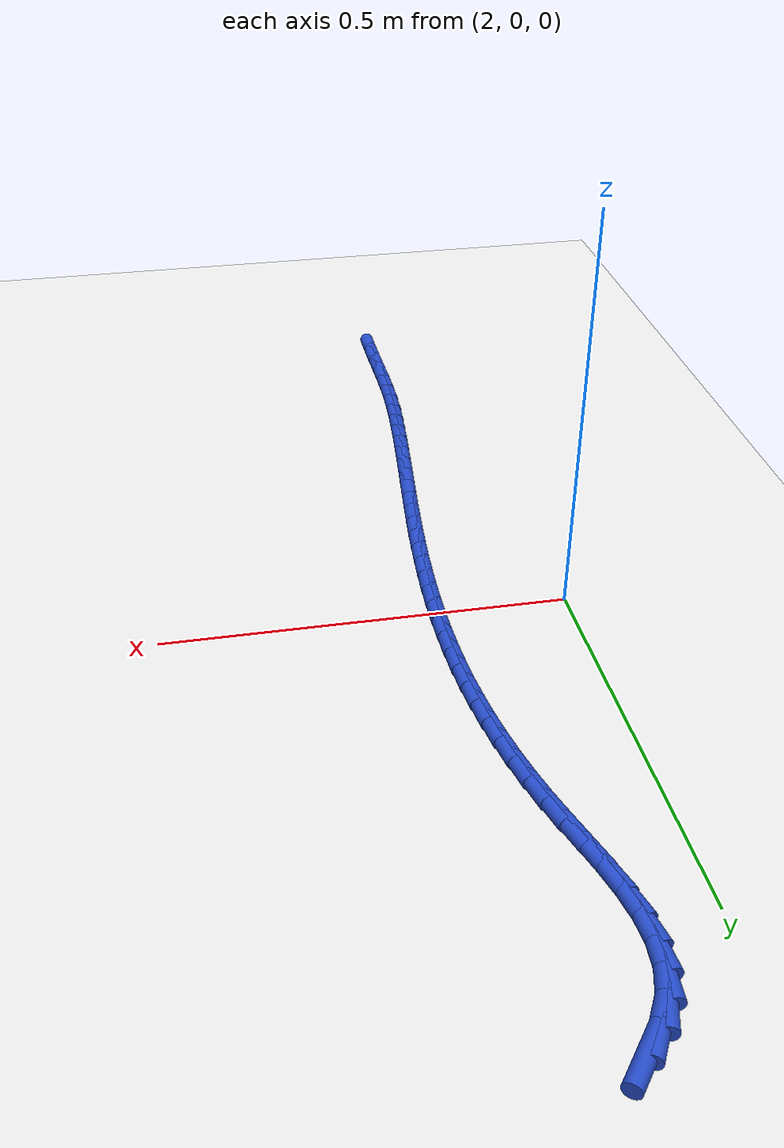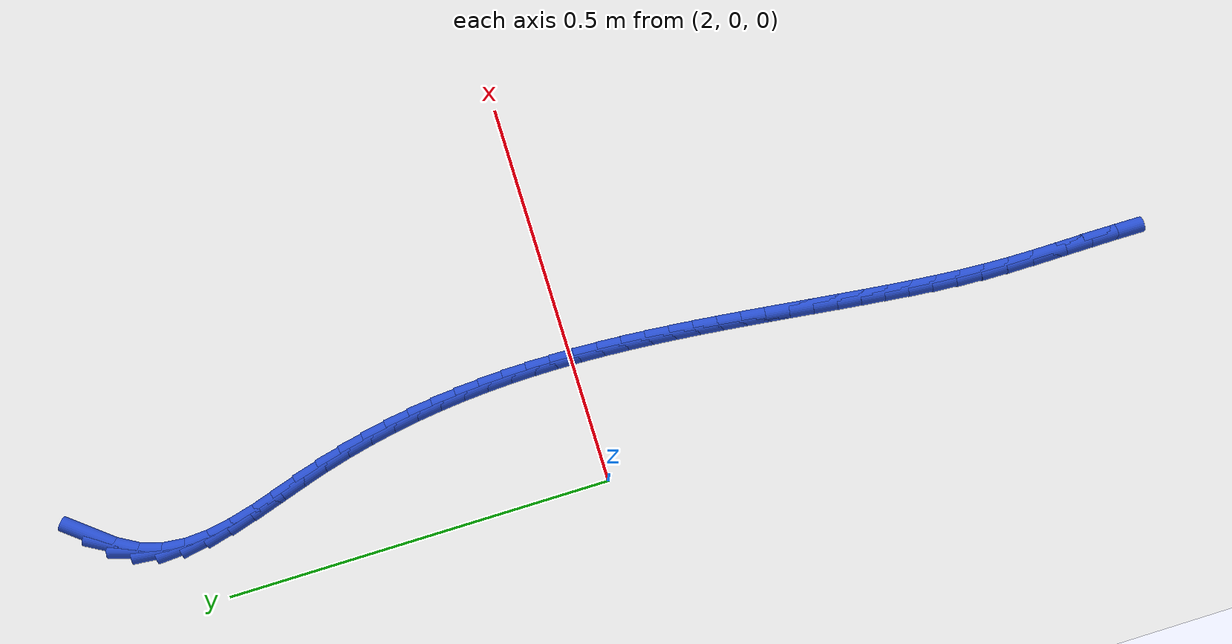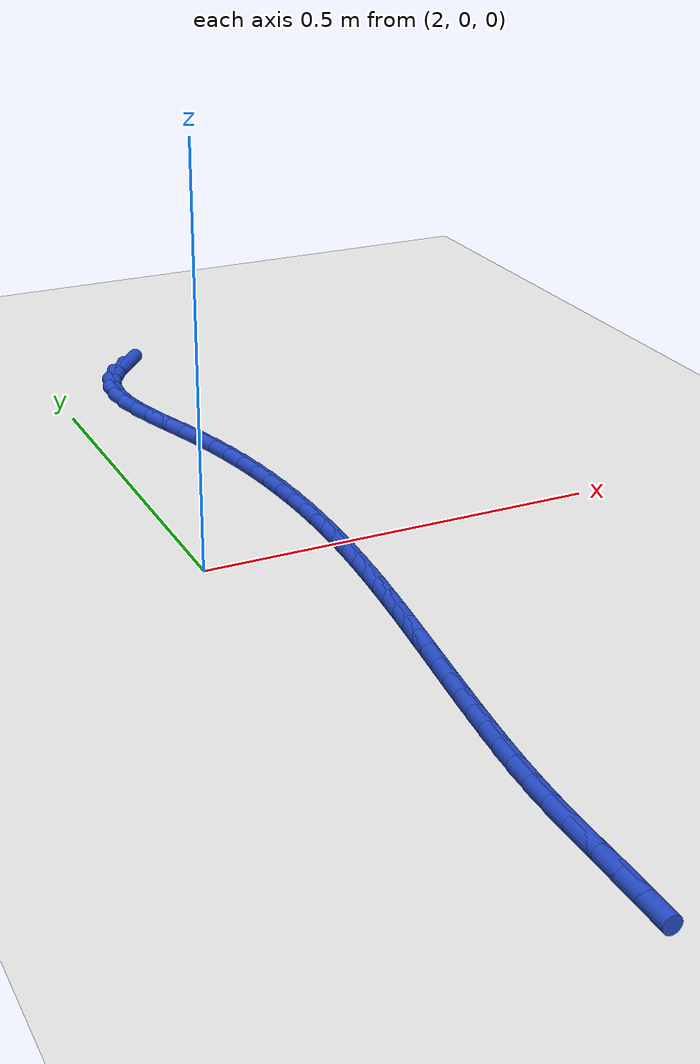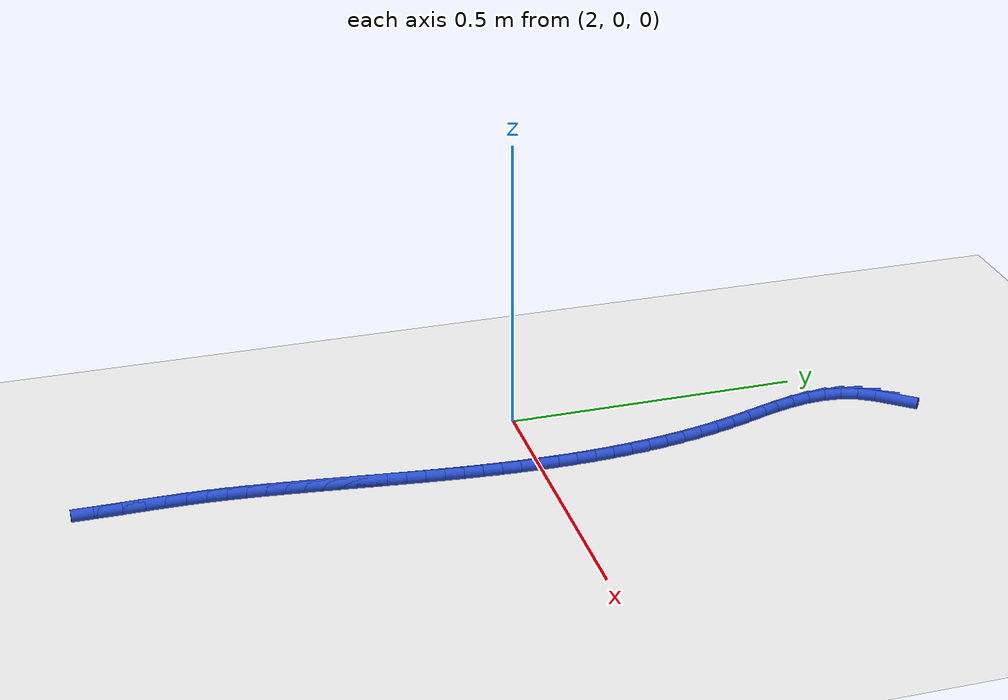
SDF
<sdf version="1.6">
 <world name="default">
  <model name="ground_plane">
   <static>1</static>
   <link name="link">
    <collision name="collision">
     <geometry><plane><normal>0 0 1</normal><size>100 100</size></plane></geometry>
     <surface><friction><ode><mu>100</mu><mu2>50</mu2></ode></friction></surface>
    </collision>
    <visual name="visual">
     <cast_shadows>0</cast_shadows>
     <geometry><plane><normal>0 0 1</normal><size>100 100</size></plane></geometry>
     <material>
      <script><uri>file://media/materials/scripts/gazebo.material</uri><name>Gazebo/WhiteGlow</name></script>
     </material>
    </visual>
   </link>
  </model>
  <model name="line">
   <link name="link_106">
    <pose>2.126607404953584 0.6441830843805446 0.01 0 1.57 0.8977410231291956</pose>
    <collision name="collision">
     <geometry><cylinder><radius>0.01</radius><length>0.08</length></cylinder></geometry>
    </collision>
    <visual name="visual">
     <material>
      <script><name>Gazebo/Blue</name><uri>file://media/materials/scripts/gazebo.material</uri></script>
     </material>
     <geometry><cylinder><radius>0.01</radius><length>0.08</length></cylinder></geometry>
    </visual>
   </link>
   <link name="link_107">
    <pose>2.105734630013912 0.6180017663672117 0.01 0 1.57 1.0568387449022112</pose>
    <collision name="collision">
     <geometry><cylinder><radius>0.01</radius><length>0.08</length></cylinder></geometry>
    </collision>
    <visual name="visual">
     <material>
      <script><name>Gazebo/Blue</name><uri>file://media/materials/scripts/gazebo.material</uri></script>
     </material>
     <geometry><cylinder><radius>0.01</radius><length>0.08</length></cylinder></geometry>
    </visual>
   </link>
   <link name="link_108">
    <pose>2.090233043172412 0.5905442435208247 0.01 0 1.57 1.2754294400649848</pose>
    <collision name="collision">
     <geometry><cylinder><radius>0.01</radius><length>0.08</length></cylinder></geometry>
    </collision>
    <visual name="visual">
     <material>
      <script><name>Gazebo/Blue</name><uri>file://media/materials/scripts/gazebo.material</uri></script>
     </material>
     <geometry><cylinder><radius>0.01</radius><length>0.08</length></cylinder></geometry>
    </visual>
   </link>
   <link name="link_109">
    <pose>2.0814799220580156 0.5617763511132083 0.01 0 1.57 1.474329962739084</pose>
    <collision name="collision">
     <geometry><cylinder><radius>0.01</radius><length>0.08</length></cylinder></geometry>
    </collision>
    <visual name="visual">
     <material>
      <script><name>Gazebo/Blue</name><uri>file://media/materials/scripts/gazebo.material</uri></script>
     </material>
     <geometry><cylinder><radius>0.01</radius><length>0.08</length></cylinder></geometry>
    </visual>
   </link>
   <link name="link_110">
    <pose>2.0785861787759523 0.5318720256302679 0.01 0 1.57 -1.5092006525082051</pose>
    <collision name="collision">
     <geometry><cylinder><radius>0.01</radius><length>0.08</length></cylinder></geometry>
    </collision>
    <visual name="visual">
     <material>
      <script><name>Gazebo/Blue</name><uri>file://media/materials/scripts/gazebo.material</uri></script>
     </material>
     <geometry><cylinder><radius>0.01</radius><length>0.08</length></cylinder></geometry>
    </visual>
   </link>
   <link name="link_111">
    <pose>2.080488865063198 0.5010211676878509 0.01 0 1.57 -1.3943335927487148</pose>
    <collision name="collision">
     <geometry><cylinder><radius>0.01</radius><length>0.08</length></cylinder></geometry>
    </collision>
    <visual name="visual">
     <material>
      <script><name>Gazebo/Blue</name><uri>file://media/materials/scripts/gazebo.material</uri></script>
     </material>
     <geometry><cylinder><radius>0.01</radius><length>0.08</length></cylinder></geometry>
    </visual>
   </link>
   <link name="link_112">
    <pose>2.0861250326567293 0.46941367790180344 0.01 0 1.57 -1.3181349389689676</pose>
    <collision name="collision">
     <geometry><cylinder><radius>0.01</radius><length>0.08</length></cylinder></geometry>
    </collision>
    <visual name="visual">
     <material>
      <script><name>Gazebo/Blue</name><uri>file://media/materials/scripts/gazebo.material</uri></script>
     </material>
     <geometry><cylinder><radius>0.01</radius><length>0.08</length></cylinder></geometry>
    </visual>
   </link>
   <link name="link_113">
    <pose>2.0944317332935216 0.43723945688797194 0.01 0 1.57 -1.2751462137543375</pose>
    <collision name="collision">
     <geometry><cylinder><radius>0.01</radius><length>0.08</length></cylinder></geometry>
    </collision>
    <visual name="visual">
     <material>
      <script><name>Gazebo/Blue</name><uri>file://media/materials/scripts/gazebo.material</uri></script>
     </material>
     <geometry><cylinder><radius>0.01</radius><length>0.08</length></cylinder></geometry>
    </visual>
   </link>
   <link name="link_114">
    <pose>2.104346018710552 0.4046884052622029 0.01 0 1.57 -1.2615709286415946</pose>
    <collision name="collision">
     <geometry><cylinder><radius>0.01</radius><length>0.08</length></cylinder></geometry>
    </collision>
    <visual name="visual">
     <material>
      <script><name>Gazebo/Blue</name><uri>file://media/materials/scripts/gazebo.material</uri></script>
     </material>
     <geometry><cylinder><radius>0.01</radius><length>0.08</length></cylinder></geometry>
    </visual>
   </link>
   <link name="link_115">
    <pose>2.114804940644796 0.3719504236403425 0.01 0 1.57 -1.2758924909136948</pose>
    <collision name="collision">
     <geometry><cylinder><radius>0.01</radius><length>0.08</length></cylinder></geometry>
    </collision>
    <visual name="visual">
     <material>
      <script><name>Gazebo/Blue</name><uri>file://media/materials/scripts/gazebo.material</uri></script>
     </material>
     <geometry><cylinder><radius>0.01</radius><length>0.08</length></cylinder></geometry>
    </visual>
   </link>
   <link name="link_116">
    <pose>2.1247487332104575 0.3392148628233388 0.01 0 1.57 -1.3092193144514563</pose>
    <collision name="collision">
     <geometry><cylinder><radius>0.01</radius><length>0.08</length></cylinder></geometry>
    </collision>
    <visual name="visual">
     <material>
      <script><name>Gazebo/Blue</name><uri>file://media/materials/scripts/gazebo.material</uri></script>
     </material>
     <geometry><cylinder><radius>0.01</radius><length>0.08</length></cylinder></geometry>
    </visual>
   </link>
   <link name="link_117">
    <pose>2.1334777137640804 0.30660886252981917 0.01 0 1.57 -1.34375813112858</pose>
    <collision name="collision">
     <geometry><cylinder><radius>0.01</radius><length>0.08</length></cylinder></geometry>
    </collision>
    <visual name="visual">
     <material>
      <script><name>Gazebo/Blue</name><uri>file://media/materials/scripts/gazebo.material</uri></script>
     </material>
     <geometry><cylinder><radius>0.01</radius><length>0.08</length></cylinder></geometry>
    </visual>
   </link>
   <link name="link_118">
    <pose>2.1409784842028214 0.27414099405025333 0.01 0 1.57 -1.377289689485116</pose>
    <collision name="collision">
     <geometry><cylinder><radius>0.01</radius><length>0.08</length></cylinder></geometry>
    </collision>
    <visual name="visual">
     <material>
      <script><name>Gazebo/Blue</name><uri>file://media/materials/scripts/gazebo.material</uri></script>
     </material>
     <geometry><cylinder><radius>0.01</radius><length>0.08</length></cylinder></geometry>
    </visual>
   </link>
   <link name="link_119">
    <pose>2.147314704774968 0.24180651541067266 0.01 0 1.57 -1.4096474455952612</pose>
    <collision name="collision">
     <geometry><cylinder><radius>0.01</radius><length>0.08</length></cylinder></geometry>
    </collision>
    <visual name="visual">
     <material>
      <script><name>Gazebo/Blue</name><uri>file://media/materials/scripts/gazebo.material</uri></script>
     </material>
     <geometry><cylinder><radius>0.01</radius><length>0.08</length></cylinder></geometry>
    </visual>
   </link>
   <link name="link_120">
    <pose>2.152550035728809 0.20960068463710668 0.01 0 1.57 -1.4406799713433642</pose>
    <collision name="collision">
     <geometry><cylinder><radius>0.01</radius><length>0.08</length></cylinder></geometry>
    </collision>
    <visual name="visual">
     <material>
      <script><name>Gazebo/Blue</name><uri>file://media/materials/scripts/gazebo.material</uri></script>
     </material>
     <geometry><cylinder><radius>0.01</radius><length>0.08</length></cylinder></geometry>
    </visual>
   </link>
   <link name="link_121">
    <pose>2.1567481373126323 0.1775187597555856 0.01 0 1.57 -1.4702524638017678</pose>
    <collision name="collision">
     <geometry><cylinder><radius>0.01</radius><length>0.08</length></cylinder></geometry>
    </collision>
    <visual name="visual">
     <material>
      <script><name>Gazebo/Blue</name><uri>file://media/materials/scripts/gazebo.material</uri></script>
     </material>
     <geometry><cylinder><radius>0.01</radius><length>0.08</length></cylinder></geometry>
    </visual>
   </link>
   <link name="link_122">
    <pose>2.159972669774726 0.14555599879213965 0.01 0 1.57 -1.4982474482444104</pose>
    <collision name="collision">
     <geometry><cylinder><radius>0.01</radius><length>0.08</length></cylinder></geometry>
    </collision>
    <visual name="visual">
     <material>
      <script><name>Gazebo/Blue</name><uri>file://media/materials/scripts/gazebo.material</uri></script>
     </material>
     <geometry><cylinder><radius>0.01</radius><length>0.08</length></cylinder></geometry>
    </visual>
   </link>
   <link name="link_123">
    <pose>2.1622872933633794 0.11370765977279854 0.01 0 1.57 -1.5245647369995385</pose>
    <collision name="collision">
     <geometry><cylinder><radius>0.01</radius><length>0.08</length></cylinder></geometry>
    </collision>
    <visual name="visual">
     <material>
      <script><name>Gazebo/Blue</name><uri>file://media/materials/scripts/gazebo.material</uri></script>
     </material>
     <geometry><cylinder><radius>0.01</radius><length>0.08</length></cylinder></geometry>
    </visual>
   </link>
   <link name="link_124">
    <pose>2.1637556683268797 0.08196900072359342 0.01 0 1.57 -1.5491207489856658</pose>
    <collision name="collision">
     <geometry><cylinder><radius>0.01</radius><length>0.08</length></cylinder></geometry>
    </collision>
    <visual name="visual">
     <material>
      <script><name>Gazebo/Blue</name><uri>file://media/materials/scripts/gazebo.material</uri></script>
     </material>
     <geometry><cylinder><radius>0.01</radius><length>0.08</length></cylinder></geometry>
    </visual>
   </link>
   <link name="link_125">
    <pose>2.164441454913516 0.05033527967055401 0.01 0 1.57 1.5697453332981302</pose>
    <collision name="collision">
     <geometry><cylinder><radius>0.01</radius><length>0.08</length></cylinder></geometry>
    </collision>
    <visual name="visual">
     <material>
      <script><name>Gazebo/Blue</name><uri>file://media/materials/scripts/gazebo.material</uri></script>
     </material>
     <geometry><cylinder><radius>0.01</radius><length>0.08</length></cylinder></geometry>
    </visual>
   </link>
   <link name="link_126">
    <pose>2.1644083133715757 0.01880175463970998 0.01 0 1.57 1.5489025081443442</pose>
    <collision name="collision">
     <geometry><cylinder><radius>0.01</radius><length>0.08</length></cylinder></geometry>
    </collision>
    <visual name="visual">
     <material>
      <script><name>Gazebo/Blue</name><uri>file://media/materials/scripts/gazebo.material</uri></script>
     </material>
     <geometry><cylinder><radius>0.01</radius><length>0.08</length></cylinder></geometry>
    </visual>
   </link>
   <link name="link_127">
    <pose>2.163719903949348 -0.012636316342907489 0.01 0 1.57 1.5299856686447213</pose>
    <collision name="collision">
     <geometry><cylinder><radius>0.01</radius><length>0.08</length></cylinder></geometry>
    </collision>
    <visual name="visual">
     <material>
      <script><name>Gazebo/Blue</name><uri>file://media/materials/scripts/gazebo.material</uri></script>
     </material>
     <geometry><cylinder><radius>0.01</radius><length>0.08</length></cylinder></geometry>
    </visual>
   </link>
   <link name="link_128">
    <pose>2.1624398868951213 -0.043983675251268665 0.01 0 1.57 1.5130268925269656</pose>
    <collision name="collision">
     <geometry><cylinder><radius>0.01</radius><length>0.08</length></cylinder></geometry>
    </collision>
    <visual name="visual">
     <material>
      <script><name>Gazebo/Blue</name><uri>file://media/materials/scripts/gazebo.material</uri></script>
     </material>
     <geometry><cylinder><radius>0.01</radius><length>0.08</length></cylinder></geometry>
    </visual>
   </link>
   <link name="link_129">
    <pose>2.160631922457183 -0.07524506405934339 0.01 0 1.57 1.4980500087240949</pose>
    <collision name="collision">
     <geometry><cylinder><radius>0.01</radius><length>0.08</length></cylinder></geometry>
    </collision>
    <visual name="visual">
     <material>
      <script><name>Gazebo/Blue</name><uri>file://media/materials/scripts/gazebo.material</uri></script>
     </material>
     <geometry><cylinder><radius>0.01</radius><length>0.08</length></cylinder></geometry>
    </visual>
   </link>
   <link name="link_130">
    <pose>2.1583596708838217 -0.1064252247411015 0.01 0 1.57 1.4850724372768678</pose>
    <collision name="collision">
     <geometry><cylinder><radius>0.01</radius><length>0.08</length></cylinder></geometry>
    </collision>
    <visual name="visual">
     <material>
      <script><name>Gazebo/Blue</name><uri>file://media/materials/scripts/gazebo.material</uri></script>
     </material>
     <geometry><cylinder><radius>0.01</radius><length>0.08</length></cylinder></geometry>
    </visual>
   </link>
   <link name="link_131">
    <pose>2.1556867924233267 -0.13752889927051276 0.01 0 1.57 1.4741068947177456</pose>
    <collision name="collision">
     <geometry><cylinder><radius>0.01</radius><length>0.08</length></cylinder></geometry>
    </collision>
    <visual name="visual">
     <material>
      <script><name>Gazebo/Blue</name><uri>file://media/materials/scripts/gazebo.material</uri></script>
     </material>
     <geometry><cylinder><radius>0.01</radius><length>0.08</length></cylinder></geometry>
    </visual>
   </link>
   <link name="link_132">
    <pose>2.1526769473239855 -0.16856082962154695 0.01 0 1.57 1.4651629214718385</pose>
    <collision name="collision">
     <geometry><cylinder><radius>0.01</radius><length>0.08</length></cylinder></geometry>
    </collision>
    <visual name="visual">
     <material>
      <script><name>Gazebo/Blue</name><uri>file://media/materials/scripts/gazebo.material</uri></script>
     </material>
     <geometry><cylinder><radius>0.01</radius><length>0.08</length></cylinder></geometry>
    </visual>
   </link>
   <link name="link_133">
    <pose>2.149393795834086 -0.19952575776817486 0.01 0 1.57 1.4582482023728014</pose>
    <collision name="collision">
     <geometry><cylinder><radius>0.01</radius><length>0.08</length></cylinder></geometry>
    </collision>
    <visual name="visual">
     <material>
      <script><name>Gazebo/Blue</name><uri>file://media/materials/scripts/gazebo.material</uri></script>
     </material>
     <geometry><cylinder><radius>0.01</radius><length>0.08</length></cylinder></geometry>
    </visual>
   </link>
   <link name="link_134">
    <pose>2.145900998201918 -0.23042842568436447 0.01 0 1.57 1.4533696622174217</pose>
    <collision name="collision">
     <geometry><cylinder><radius>0.01</radius><length>0.08</length></cylinder></geometry>
    </collision>
    <visual name="visual">
     <material>
      <script><name>Gazebo/Blue</name><uri>file://media/materials/scripts/gazebo.material</uri></script>
     </material>
     <geometry><cylinder><radius>0.01</radius><length>0.08</length></cylinder></geometry>
    </visual>
   </link>
   <link name="link_135">
    <pose>2.142262214675768 -0.2612735753440864 0.01 0 1.57 1.4505343255031506</pose>
    <collision name="collision">
     <geometry><cylinder><radius>0.01</radius><length>0.08</length></cylinder></geometry>
    </collision>
    <visual name="visual">
     <material>
      <script><name>Gazebo/Blue</name><uri>file://media/materials/scripts/gazebo.material</uri></script>
     </material>
     <geometry><cylinder><radius>0.01</radius><length>0.08</length></cylinder></geometry>
    </visual>
   </link>
   <link name="link_136">
    <pose>2.1385411055039256 -0.29206594872131064 0.01 0 1.57 1.4497499335300346</pose>
    <collision name="collision">
     <geometry><cylinder><radius>0.01</radius><length>0.08</length></cylinder></geometry>
    </collision>
    <visual name="visual">
     <material>
      <script><name>Gazebo/Blue</name><uri>file://media/materials/scripts/gazebo.material</uri></script>
     </material>
     <geometry><cylinder><radius>0.01</radius><length>0.08</length></cylinder></geometry>
    </visual>
   </link>
   <link name="link_137">
    <pose>2.1348013309346783 -0.32281028779000676 0.01 0 1.57 1.4510253135022353</pose>
    <collision name="collision">
     <geometry><cylinder><radius>0.01</radius><length>0.08</length></cylinder></geometry>
    </collision>
    <visual name="visual">
     <material>
      <script><name>Gazebo/Blue</name><uri>file://media/materials/scripts/gazebo.material</uri></script>
     </material>
     <geometry><cylinder><radius>0.01</radius><length>0.08</length></cylinder></geometry>
    </visual>
   </link>
   <link name="link_138">
    <pose>2.131106551216315 -0.35351133452414485 0.01 0 1.57 1.454370493802974</pose>
    <collision name="collision">
     <geometry><cylinder><radius>0.01</radius><length>0.08</length></cylinder></geometry>
    </collision>
    <visual name="visual">
     <material>
      <script><name>Gazebo/Blue</name><uri>file://media/materials/scripts/gazebo.material</uri></script>
     </material>
     <geometry><cylinder><radius>0.01</radius><length>0.08</length></cylinder></geometry>
    </visual>
   </link>
   <link name="link_139">
    <pose>2.1275204265971244 -0.38417383089769447 0.01 0 1.57 1.4597965579826948</pose>
    <collision name="collision">
     <geometry><cylinder><radius>0.01</radius><length>0.08</length></cylinder></geometry>
    </collision>
    <visual name="visual">
     <material>
      <script><name>Gazebo/Blue</name><uri>file://media/materials/scripts/gazebo.material</uri></script>
     </material>
     <geometry><cylinder><radius>0.01</radius><length>0.08</length></cylinder></geometry>
    </visual>
   </link>
   <link name="link_140">
    <pose>2.124106617325393 -0.4148025188846264 0.01 0 1.57 1.4673152279584873</pose>
    <collision name="collision">
     <geometry><cylinder><radius>0.01</radius><length>0.08</length></cylinder></geometry>
    </collision>
    <visual name="visual">
     <material>
      <script><name>Gazebo/Blue</name><uri>file://media/materials/scripts/gazebo.material</uri></script>
     </material>
     <geometry><cylinder><radius>0.01</radius><length>0.08</length></cylinder></geometry>
    </visual>
   </link>
   <link name="link_141">
    <pose>2.1209287836494113 -0.4454021404589088 0.01 0 1.57 1.4775451111706688</pose>
    <collision name="collision">
     <geometry><cylinder><radius>0.01</radius><length>0.08</length></cylinder></geometry>
    </collision>
    <visual name="visual">
     <material>
      <script><name>Gazebo/Blue</name><uri>file://media/materials/scripts/gazebo.material</uri></script>
     </material>
     <geometry><cylinder><radius>0.01</radius><length>0.08</length></cylinder></geometry>
    </visual>
   </link>
   <link name="link_142">
    <pose>2.1180642294765293 -0.47603172689193485 0.01 0 1.57 1.4929434305678746</pose>
    <collision name="collision">
     <geometry><cylinder><radius>0.01</radius><length>0.08</length></cylinder></geometry>
    </collision>
    <visual name="visual">
     <material>
      <script><name>Gazebo/Blue</name><uri>file://media/materials/scripts/gazebo.material</uri></script>
     </material>
     <geometry><cylinder><radius>0.01</radius><length>0.08</length></cylinder></geometry>
    </visual>
   </link>
   <link name="link_143">
    <pose>2.1156494742302128 -0.5069859331064467 0.01 0 1.57 1.5135729845963795</pose>
    <collision name="collision">
     <geometry><cylinder><radius>0.01</radius><length>0.08</length></cylinder></geometry>
    </collision>
    <visual name="visual">
     <material>
      <script><name>Gazebo/Blue</name><uri>file://media/materials/scripts/gazebo.material</uri></script>
     </material>
     <geometry><cylinder><radius>0.01</radius><length>0.08</length></cylinder></geometry>
    </visual>
   </link>
   <link name="link_144">
    <pose>2.1138370984244363 -0.5386233224910628 0.01 0 1.57 1.5383429088464917</pose>
    <collision name="collision">
     <geometry><cylinder><radius>0.01</radius><length>0.08</length></cylinder></geometry>
    </collision>
    <visual name="visual">
     <material>
      <script><name>Gazebo/Blue</name><uri>file://media/materials/scripts/gazebo.material</uri></script>
     </material>
     <geometry><cylinder><radius>0.01</radius><length>0.08</length></cylinder></geometry>
    </visual>
   </link>
   <link name="link_145">
    <pose>2.112776342893706 -0.5712973262509051 0.01 0 1.57 1.5610616193120659</pose>
    <collision name="collision">
     <geometry><cylinder><radius>0.01</radius><length>0.08</length></cylinder></geometry>
    </collision>
    <visual name="visual">
     <material>
      <script><name>Gazebo/Blue</name><uri>file://media/materials/scripts/gazebo.material</uri></script>
     </material>
     <geometry><cylinder><radius>0.01</radius><length>0.08</length></cylinder></geometry>
    </visual>
   </link>
   <link name="link_146">
    <pose>2.1124472602907765 -0.6051013422755238 0.01 0 1.57 -1.5668445929984436</pose>
    <collision name="collision">
     <geometry><cylinder><radius>0.01</radius><length>0.08</length></cylinder></geometry>
    </collision>
    <visual name="visual">
     <material>
      <script><name>Gazebo/Blue</name><uri>file://media/materials/scripts/gazebo.material</uri></script>
     </material>
     <geometry><cylinder><radius>0.01</radius><length>0.08</length></cylinder></geometry>
    </visual>
   </link>
   <link name="link_147">
    <pose>2.1125841876876232 -0.6397511165612001 0.01 0 1.57 -1.5617589556294307</pose>
    <collision name="collision">
     <geometry><cylinder><radius>0.01</radius><length>0.08</length></cylinder></geometry>
    </collision>
    <visual name="visual">
     <material>
      <script><name>Gazebo/Blue</name><uri>file://media/materials/scripts/gazebo.material</uri></script>
     </material>
     <geometry><cylinder><radius>0.01</radius><length>0.08</length></cylinder></geometry>
    </visual>
   </link>
   <link name="link_148">
    <pose>2.1129021454287455 -0.6749327063124769 0.01 0 1.57 -1.5647508727656123</pose>
    <collision name="collision">
     <geometry><cylinder><radius>0.01</radius><length>0.08</length></cylinder></geometry>
    </collision>
    <visual name="visual">
     <material>
      <script><name>Gazebo/Blue</name><uri>file://media/materials/scripts/gazebo.material</uri></script>
     </material>
     <geometry><cylinder><radius>0.01</radius><length>0.08</length></cylinder></geometry>
    </visual>
   </link>
   <link name="link_149">
    <pose>2.1131161538586407 -0.7103321687338994 0.01 0 1.57 1.5658415874892735</pose>
    <collision name="collision">
     <geometry><cylinder><radius>0.01</radius><length>0.08</length></cylinder></geometry>
    </collision>
    <visual name="visual">
     <material>
      <script><name>Gazebo/Blue</name><uri>file://media/materials/scripts/gazebo.material</uri></script>
     </material>
     <geometry><cylinder><radius>0.01</radius><length>0.08</length></cylinder></geometry>
    </visual>
   </link>
  </model>
 </world>
</sdf>
